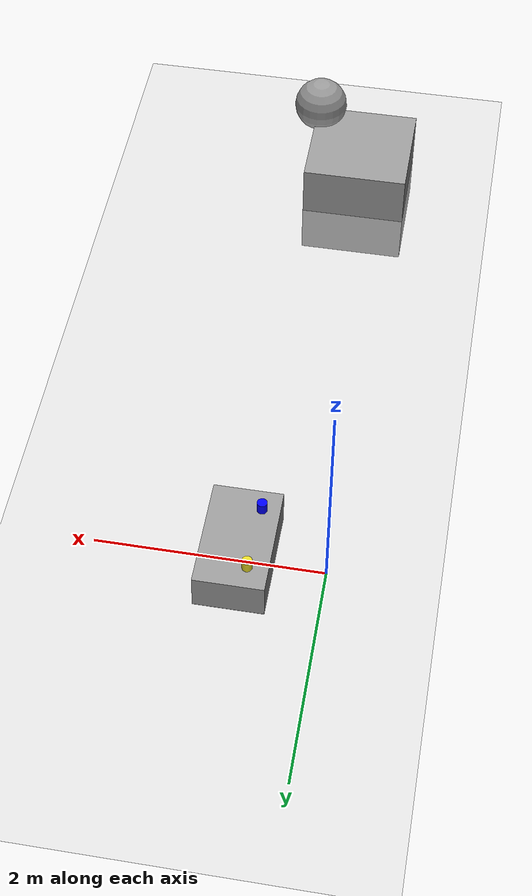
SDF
<sdf version='1.7'>
  <world name='default'>
    <light name='sun' type='directional'>
      <cast_shadows>1</cast_shadows>
      <pose>0 0 10 0 -0 0</pose>
      <diffuse>0.8 0.8 0.8 1</diffuse>
      <specular>0.2 0.2 0.2 1</specular>
      <attenuation>
        <range>1000</range>
        <constant>0.9</constant>
        <linear>0.01</linear>
        <quadratic>0.001</quadratic>
      </attenuation>
      <direction>-0.5 0.1 -0.9</direction>
      <spot>
        <inner_angle>0</inner_angle>
        <outer_angle>0</outer_angle>
        <falloff>0</falloff>
      </spot>
    </light>
    <model name='ground_plane'>
      <static>1</static>
      <link name='link'>
        <collision name='collision'>
          <geometry>
            <plane>
              <normal>0 0 1</normal>
              <size>100 100</size>
            </plane>
          </geometry>
          <surface>
            <contact>
              <collide_bitmask>65535</collide_bitmask>
              <ode/>
            </contact>
            <friction>
              <ode>
                <mu>100</mu>
                <mu2>50</mu2>
              </ode>
              <torsional>
                <ode/>
              </torsional>
            </friction>
            <bounce/>
          </surface>
          <max_contacts>10</max_contacts>
        </collision>
        <visual name='visual'>
          <cast_shadows>0</cast_shadows>
          <geometry>
            <plane>
              <normal>0 0 1</normal>
              <size>100 100</size>
            </plane>
          </geometry>
          <material>
            <script>
              <uri>file://media/materials/scripts/gazebo.material</uri>
              <name>Gazebo/Grey</name>
            </script>
          </material>
        </visual>
        <self_collide>0</self_collide>
        <enable_wind>0</enable_wind>
        <kinematic>0</kinematic>
      </link>
    </model>
    <gravity>0 0 -9.8</gravity>
    <magnetic_field>6e-06 2.3e-05 -4.2e-05</magnetic_field>
    <atmosphere type='adiabatic'/>
    <physics type='ode'>
      <max_step_size>0.001</max_step_size>
      <real_time_factor>1</real_time_factor>
      <real_time_update_rate>1000</real_time_update_rate>
    </physics>
    <scene>
      <ambient>0.4 0.4 0.4 1</ambient>
      <background>0.7 0.7 0.7 1</background>
      <shadows>1</shadows>
    </scene>
    <wind/>
    <spherical_coordinates>
      <surface_model>EARTH_WGS84</surface_model>
      <latitude_deg>0</latitude_deg>
      <longitude_deg>0</longitude_deg>
      <elevation>0</elevation>
      <heading_deg>0</heading_deg>
    </spherical_coordinates>
    <light name='user_spot_light_0' type='spot'>
      <pose>2.799 -1.37068 1 0 -0 0</pose>
      <diffuse>0.5 0.5 0.5 1</diffuse>
      <specular>0.1 0.1 0.1 1</specular>
      <direction>0 0 -1</direction>
      <attenuation>
        <range>20</range>
        <constant>0.5</constant>
        <linear>0.01</linear>
        <quadratic>0.001</quadratic>
      </attenuation>
      <cast_shadows>0</cast_shadows>
      <spot>
        <inner_angle>0.6</inner_angle>
        <outer_angle>1</outer_angle>
        <falloff>1</falloff>
      </spot>
    </light>
    <gui fullscreen='0'>
      <camera name='user_camera'>
        <pose>0.706235 2.37347 0.792439 0 0.187072 -1.46625</pose>
        <view_controller>orbit</view_controller>
        <projection_type>perspective</projection_type>
      </camera>
    </gui>
    <model name='table'>
      <link name='link_0'>
        <inertial>
          <mass>0.209047</mass>
          <inertia>
            <ixx>0.0194914</ixx>
            <ixy>0</ixy>
            <ixz>0</ixz>
            <iyy>0.0084732</iyy>
            <iyz>0</iyz>
            <izz>0.0238229</izz>
          </inertia>
          <pose>0 0 0 0 -0 0</pose>
        </inertial>
        <pose>0 0 0 0 -0 0</pose>
        <gravity>1</gravity>
        <self_collide>0</self_collide>
        <kinematic>0</kinematic>
        <enable_wind>0</enable_wind>
        <visual name='visual'>
          <pose>0 0 0 0 -0 0</pose>
          <geometry>
            <box>
              <size>0.606231 1 0.344783</size>
            </box>
          </geometry>
          <material>
            <lighting>1</lighting>
            <script>
              <uri>file://media/materials/scripts/gazebo.material</uri>
              <name>Gazebo/Grey</name>
            </script>
            <shader type='pixel'>
              <normal_map>__default__</normal_map>
            </shader>
            <ambient>0 0 0 1</ambient>
            <diffuse>0 0 0 1</diffuse>
            <specular>0 0 0 1</specular>
            <emissive>0 0 0 1</emissive>
          </material>
          <transparency>0</transparency>
          <cast_shadows>1</cast_shadows>
        </visual>
      </link>
      <static>1</static>
      <allow_auto_disable>1</allow_auto_disable>
      <pose>0.750169 -0.012612 0.162985 0 -0 0</pose>
    </model>
    <model name='dyn_obj_2'>
      <link name='link_0'>
        <inertial>
          <mass>0.00080489</mass>
          <inertia>
            <ixx>1.1e-06</ixx>
            <ixy>0</ixy>
            <ixz>0</ixz>
            <iyy>1.1e-06</iyy>
            <iyz>0</iyz>
            <izz>7.9e-07</izz>
          </inertia>
          <pose>0 0 0 0 -0 0</pose>
        </inertial>
        <pose>0 0 0 0 -0 0</pose>
        <gravity>1</gravity>
        <self_collide>0</self_collide>
        <kinematic>0</kinematic>
        <enable_wind>0</enable_wind>
        <visual name='visual'>
          <pose>0 0 0 0 -0 0</pose>
          <geometry>
            <cylinder>
              <radius>0.0442167</radius>
              <length>0.102933</length>
            </cylinder>
          </geometry>
          <material>
            <lighting>1</lighting>
            <script>
              <uri>file://media/materials/scripts/gazebo.material</uri>
              <name>Gazebo/Grey</name>
            </script>
            <shader type='pixel'>
              <normal_map>__default__</normal_map>
            </shader>
            <ambient>0 0 1 1</ambient>
            <diffuse>0 0 1 1</diffuse>
            <specular>0.1 0.1 0.1 1</specular>
            <emissive>0 0 0 1</emissive>
          </material>
          <transparency>0</transparency>
          <cast_shadows>1</cast_shadows>
        </visual>
      </link>
      <static>1</static>
      <allow_auto_disable>1</allow_auto_disable>
      <pose>0.597864 -0.290173 0.419515 0 -0 0</pose>
    </model>
    <model name='dyn_obj_1'>
      <link name='link_0'>
        <inertial>
          <mass>0.00080489</mass>
          <inertia>
            <ixx>1.1e-06</ixx>
            <ixy>0</ixy>
            <ixz>0</ixz>
            <iyy>1.1e-06</iyy>
            <iyz>0</iyz>
            <izz>7.9e-07</izz>
          </inertia>
          <pose>0 0 0 0 -0 0</pose>
        </inertial>
        <pose>0 0 0 0 -0 0</pose>
        <gravity>0</gravity>
        <self_collide>0</self_collide>
        <kinematic>0</kinematic>
        <enable_wind>0</enable_wind>
        <visual name='visual'>
          <pose>0 0 0 0 -0 0</pose>
          <geometry>
            <cylinder>
              <radius>0.0442167</radius>
              <length>0.102933</length>
            </cylinder>
          </geometry>
          <material>
            <lighting>1</lighting>
            <script>
              <uri>file://media/materials/scripts/gazebo.material</uri>
              <name>Gazebo/Yellow</name>
            </script>
            <shader type='pixel'>
              <normal_map>__default__</normal_map>
            </shader>
            <ambient>0 0 1 1</ambient>
            <diffuse>0 0 1 1</diffuse>
            <specular>0.1 0.1 0.1 1</specular>
            <emissive>0 0 0 1</emissive>
          </material>
          <transparency>0</transparency>
          <cast_shadows>1</cast_shadows>
        </visual>
      </link>
      <static>1</static>
      <allow_auto_disable>1</allow_auto_disable>
      <pose>0.622370 0.304499 0.409051 0 -0 0</pose>
    </model>
    <model name='object_random'>
      <link name='link_0'>
        <inertial>
          <mass>1</mass>
          <inertia>
            <ixx>0.166667</ixx>
            <ixy>0</ixy>
            <ixz>0</ixz>
            <iyy>0.166667</iyy>
            <iyz>0</iyz>
            <izz>0.166667</izz>
          </inertia>
          <pose>0 0 0 0 -0 0</pose>
        </inertial>
        <pose>0 0 0 0 -0 0</pose>
        <self_collide>0</self_collide>
        <enable_wind>0</enable_wind>
        <kinematic>0</kinematic>
        <gravity>1</gravity>
        <visual name='visual'>
          <pose>0 0 0 0 -0 0</pose>
          <geometry>
            <box>
              <size>1 1 1</size>
            </box>
          </geometry>
          <material>
            <lighting>1</lighting>
            <script>
              <uri>file://media/materials/scripts/gazebo.material</uri>
              <name>Gazebo/Grey</name>
            </script>
            <shader type='pixel'>
              <normal_map>__default__</normal_map>
            </shader>
            <emissive>0 0 0 1</emissive>
            <ambient>0.3 0.3 0.3 1</ambient>
            <diffuse>0.7 0.7 0.7 1</diffuse>
            <specular>0.01 0.01 0.01 1</specular>
          </material>
          <transparency>0</transparency>
          <cast_shadows>1</cast_shadows>
        </visual>
        <collision name='collision'>
          <laser_retro>0</laser_retro>
          <max_contacts>10</max_contacts>
          <pose>0 0 0 0 -0 0</pose>
          <geometry>
            <box>
              <size>1 1 1</size>
            </box>
          </geometry>
          <surface>
            <friction>
              <ode>
                <mu>1</mu>
                <mu2>1</mu2>
                <fdir1>0 0 0</fdir1>
                <slip1>0</slip1>
                <slip2>0</slip2>
              </ode>
              <torsional>
                <coefficient>1</coefficient>
                <patch_radius>0</patch_radius>
                <surface_radius>0</surface_radius>
                <use_patch_radius>1</use_patch_radius>
                <ode>
                  <slip>0</slip>
                </ode>
              </torsional>
            </friction>
            <bounce>
              <restitution_coefficient>0</restitution_coefficient>
              <threshold>1e+06</threshold>
            </bounce>
            <contact>
              <collide_without_contact>0</collide_without_contact>
              <collide_without_contact_bitmask>1</collide_without_contact_bitmask>
              <collide_bitmask>1</collide_bitmask>
              <ode>
                <soft_cfm>0</soft_cfm>
                <soft_erp>0.2</soft_erp>
                <kp>1e+13</kp>
                <kd>1</kd>
                <max_vel>0.01</max_vel>
                <min_depth>0</min_depth>
              </ode>
              <bullet>
                <split_impulse>1</split_impulse>
                <split_impulse_penetration_threshold>-0.01</split_impulse_penetration_threshold>
                <soft_cfm>0</soft_cfm>
                <soft_erp>0.2</soft_erp>
                <kp>1e+13</kp>
                <kd>1</kd>
              </bullet>
            </contact>
          </surface>
        </collision>
      </link>
      <link name='link_1'>
        <inertial>
          <mass>0.14012</mass>
          <inertia>
            <ixx>0.00378022</ixx>
            <ixy>0</ixy>
            <ixz>0</ixz>
            <iyy>0.00378022</iyy>
            <iyz>0</iyz>
            <izz>0.00378022</izz>
          </inertia>
          <pose>0 0 0 0 -0 0</pose>
        </inertial>
        <pose>0.468566 -0.427513 0.609265 0 -0 0</pose>
        <gravity>1</gravity>
        <self_collide>0</self_collide>
        <kinematic>0</kinematic>
        <enable_wind>0</enable_wind>
        <visual name='visual'>
          <pose>0 0 0 0 -0 0</pose>
          <geometry>
            <sphere>
              <radius>0.259704</radius>
            </sphere>
          </geometry>
          <material>
            <lighting>1</lighting>
            <script>
              <uri>file://media/materials/scripts/gazebo.material</uri>
              <name>Gazebo/Grey</name>
            </script>
            <shader type='pixel'>
              <normal_map>__default__</normal_map>
            </shader>
            <emissive>0 0 0 1</emissive>
            <ambient>0.3 0.3 0.3 1</ambient>
            <diffuse>0.7 0.7 0.7 1</diffuse>
            <specular>0.01 0.01 0.01 1</specular>
          </material>
          <transparency>0</transparency>
          <cast_shadows>1</cast_shadows>
        </visual>
        <collision name='collision'>
          <laser_retro>0</laser_retro>
          <max_contacts>10</max_contacts>
          <pose>0 0 0 0 -0 0</pose>
          <geometry>
            <sphere>
              <radius>0.259704</radius>
            </sphere>
          </geometry>
          <surface>
            <friction>
              <ode>
                <mu>1</mu>
                <mu2>1</mu2>
                <fdir1>0 0 0</fdir1>
                <slip1>0</slip1>
                <slip2>0</slip2>
              </ode>
              <torsional>
                <coefficient>1</coefficient>
                <patch_radius>0</patch_radius>
                <surface_radius>0</surface_radius>
                <use_patch_radius>1</use_patch_radius>
                <ode>
                  <slip>0</slip>
                </ode>
              </torsional>
            </friction>
            <bounce>
              <restitution_coefficient>0</restitution_coefficient>
              <threshold>1e+06</threshold>
            </bounce>
            <contact>
              <collide_without_contact>0</collide_without_contact>
              <collide_without_contact_bitmask>1</collide_without_contact_bitmask>
              <collide_bitmask>1</collide_bitmask>
              <ode>
                <soft_cfm>0</soft_cfm>
                <soft_erp>0.2</soft_erp>
                <kp>1e+13</kp>
                <kd>1</kd>
                <max_vel>0.01</max_vel>
                <min_depth>0</min_depth>
              </ode>
              <bullet>
                <split_impulse>1</split_impulse>
                <split_impulse_penetration_threshold>-0.01</split_impulse_penetration_threshold>
                <soft_cfm>0</soft_cfm>
                <soft_erp>0.2</soft_erp>
                <kp>1e+13</kp>
                <kd>1</kd>
              </bullet>
            </contact>
          </surface>
        </collision>
      </link>
      <joint name='link_1_JOINT_0' type='fixed'>
        <parent>link_1</parent>
        <child>link_0</child>
        <pose>0 0 0 0 -0 0</pose>
        <physics>
          <ode>
            <limit>
              <cfm>0</cfm>
              <erp>0.2</erp>
            </limit>
            <suspension>
              <cfm>0</cfm>
              <erp>0.2</erp>
            </suspension>
          </ode>
        </physics>
      </joint>
      <static>1</static>
      <allow_auto_disable>1</allow_auto_disable>
      <pose>0.374144 -4.86825 0 0 -0 0</pose>
    </model>
  </world>
</sdf>
